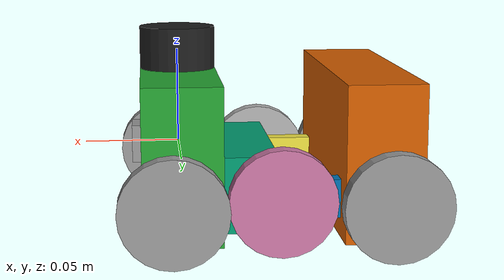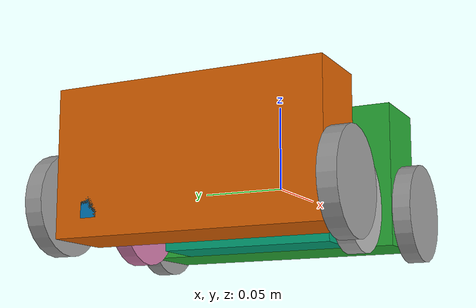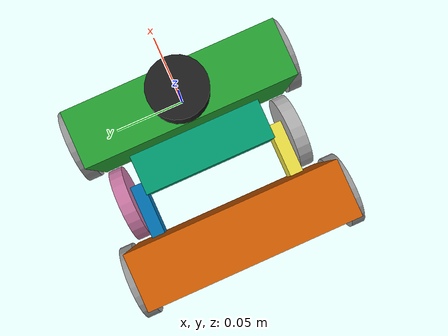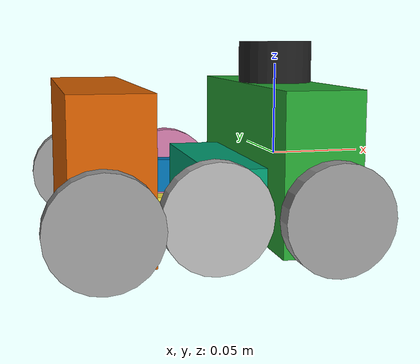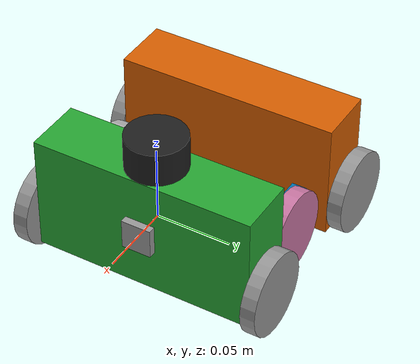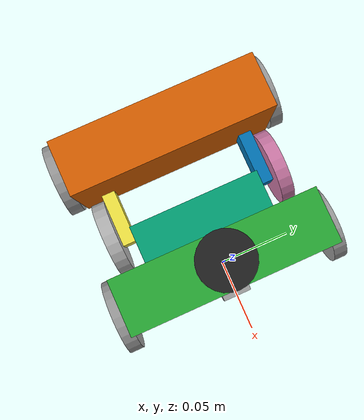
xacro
<?xml version='1.0'?>

<robot name="magbot" xmlns:xacro="http://www.ros.org/wiki/xacro">

  <xacro:property name="diameter" value="0.055"/>
  <xacro:property name="thickness" value="0.01"/>
  <xacro:include filename="magbot.gazebo" />

  <link name="robot_footprint"></link>

  <joint name="robot_footprint_joint" type="fixed">
    <origin xyz="0 0 0" rpy="0 0 0" />
    <parent link="robot_footprint"/>
    <child link="chassis" />
  </joint>
  <joint name="robot_footprint_joint_dummy1" type="fixed">
    <origin xyz="-0.035 0 -0.02" rpy="0 0 0" />
    <parent link="robot_footprint"/>
    <child link="front_dummy_body" />
  </joint>
  <link name='chassis'>
    <pose>0 0 0.12 0 0 0</pose>

    <inertial>
      <mass value="15.0"/>
      <origin xyz="0.0 0 0" rpy=" 0 0 0"/>
      <inertia ixx="0.1" ixy="0" ixz="0" iyy="0.1" iyz="0" izz="0.1" />
    </inertial>

    <collision name='collision'>
      <origin xyz="0 0 0" rpy=" 0 0 0"/>
      <geometry>
        <box size=".04 .15 .08"/>
      </geometry>
    </collision>

    <visual name='chassis_visual'>
      <origin xyz="0 0 0" rpy=" 0 0 0"/>
      <geometry>
        <box size=".04 .15 .08"/>
      </geometry>
    </visual>
  </link>
  <link name='front_dummy_body'>
    <pose>0 0 0 0 0 0</pose>

    <inertial>
      <mass value="15.0"/>
      <origin xyz="0.0 0 0" rpy=" 0 0 0"/>
      <inertia ixx="0.1" ixy="0" ixz="0" iyy="0.1" iyz="0" izz="0.1" />
    </inertial>

    <collision name='collision'>
      <origin xyz="0 0 0" rpy=" 0 0 0"/>
      <geometry>
        <box size=".0 .0 .0"/>
      </geometry>
    </collision>

    <visual name='chassis_visual'>
      <origin xyz="0 0 0" rpy=" 0 0 0"/>
      <geometry>
        <box size=".03 .1 .04"/>
      </geometry>
    </visual>
  </link>
  <link name='dummy_body_link_right'>
    <inertial>
      <mass value="15.0"/>
      <origin xyz="0.0 0 0" rpy=" 0 0 0"/>
      <inertia ixx="0.1" ixy="0" ixz="0" iyy="0.1" iyz="0" izz="0.1" />
    </inertial>

    <visual name='chassis_visual'>
      <origin xyz="-0.03 -0.005 0" rpy=" 0 0 0"/>
      <geometry>
        <box size=".08 .01 .02"/>
      </geometry>
    </visual>
    <collision name='collision'>
      <origin xyz="-0.03 -0.005 0" rpy=" 0 0 0"/>
      <geometry>
        <box size=".08 .01 .02"/>
      </geometry>
    </collision>
  </link>

  <joint type="revolute" name="dummy_body_link_right_joint">
    <origin xyz="-0.015 -0.05 0" rpy="0 0 0"/>
    <child link="dummy_body_link_right"/>
    <parent link="front_dummy_body"/>
    <axis xyz="0 1 0" rpy="0 0 0"/>
    <limit lower="-1.5708" upper="1.5708" effort="1" velocity="1"/>
    <dynamics damping="1.0" friction="1.0"/>
  </joint>

  <link name='dummy_body_link_left'>
    <inertial>
      <mass value="15.0"/>
      <origin xyz="0.0 0 0" rpy=" 0 0 0"/>
      <inertia ixx="0.1" ixy="0" ixz="0" iyy="0.1" iyz="0" izz="0.1" />
    </inertial>
    <visual name='chassis_visual'>
      <origin xyz="-0.03 0.005 0" rpy=" 0 0 0"/>
      <geometry>
        <box size=".08 .01 .02"/>
      </geometry>
    </visual>

    <collision name='collision'>
      <origin xyz="-0.03 0.005 0" rpy=" 0 0 0"/>
      <geometry>
        <box size=".08 .01 .02"/>
      </geometry>
    </collision>
  </link>

  <joint type="fixed" name="dummy_body_link_left_joint">
    <origin xyz="0 0.1 0" rpy="0 0 0"/>
    <child link="dummy_body_link_left"/>
    <parent link="dummy_body_link_right"/>
    <dynamics damping="1.0" friction="1.0"/>
  </joint>

  <link name='chassis_back_body'>
    <pose>0 0 0 0 0 0</pose>
    <inertial>
      <mass value="15.0"/>
      <origin xyz="0.0 0 0" rpy=" 0 0 0"/>
      <inertia ixx="0.1" ixy="0" ixz="0" iyy="0.1" iyz="0" izz="0.1" />
    </inertial>
    <collision name='collision'>
      <origin xyz="0 0 0" rpy=" 0 0 0"/>
      <geometry>
        <box size=".04 .15 .08"/>
      </geometry>
    </collision>
    <visual name='chassis_visual'>
      <origin xyz="0 0 0" rpy=" 0 0 0"/>
      <geometry>
        <box size=".04 .15 .08"/>
      </geometry>
    </visual>
  </link>

  <joint type="fixed" name="chassis_back_body_joint">
    <origin xyz="-0.05 0.05 0.02" rpy="0 0 0"/>

    <child link="chassis_back_body"/>
    <parent link="dummy_body_link_right"/>

    <dynamics damping="1.0" friction="1.0"/>
  </joint>

  <joint type="continuous" name="back_left_wheel_joint">
    <origin xyz="-0.005 0.081 -0.02" rpy="0 0 0"/>
    <child link="back_left_wheel"/>
    <parent link="chassis_back_body"/>
    <axis xyz="0 1 0" rpy="0 0 0"/>
    <limit effort="10" velocity="1000"/>
    <dynamics damping="1.0" friction="1.0"/>
  </joint>

  <joint type="continuous" name="back_right_wheel_joint">
    <origin xyz="-0.005 -0.081 -0.02" rpy="0 0 0"/>
    <child link="back_right_wheel"/>
    <parent link="chassis_back_body"/>
    <axis xyz="0 1 0" rpy="0 0 0"/>
    <limit effort="10" velocity="1000"/>
    <dynamics damping="1.0" friction="1.0"/>
  </joint>

  <!--  dummy wheel      -->
  <link name="dummy_left_wheel">
    <inertial>
      <mass value="8.0"/>
      <origin rpy=" 0 1.5707 1.5707" xyz="0.0 0 0"/>
      <inertia ixx="0.1" ixy="0" ixz="0" iyy="0.1" iyz="0" izz="0.1"/>
    </inertial>
    <collision>
      <origin rpy=" 0 1.5707 1.5707" xyz="0.0 0 0"/>
      <geometry>
	      <cylinder length="${thickness}" radius="${diameter/2}"/>
      </geometry>
    </collision>
    <visual>
      <origin xyz="0.0 0 0" rpy=" 0 1.5707 1.5707"/>
      <geometry>
	      <cylinder length="${thickness}" radius="${diameter/2}"/>
      </geometry>
    </visual>
  </link>

  <link name="dummy_right_wheel">
    <inertial>
      <mass value="8.0"/>
      <origin rpy=" 0 1.5707 1.5707" xyz="0.0 0 0"/>
      <inertia ixx="0.1" ixy="0" ixz="0" iyy="0.1" iyz="0" izz="0.1"/>
    </inertial>
    <collision>
      <origin rpy=" 0 1.5707 1.5707" xyz="0.0 0 0"/>
      <geometry>
	      <cylinder length="${thickness}" radius="${diameter/2}"/>
      </geometry>
    </collision>
    <visual>
      <origin xyz="0.0 0 0" rpy=" 0 1.5707 1.5707"/>
      <geometry>
	      <cylinder length="${thickness}" radius="${diameter/2}"/>
      </geometry>
    </visual>
  </link>

   <joint type="continuous" name="dummy_right_wheel_joint">
    <origin xyz="0 -0.0151 0" rpy="0 0 0"/>
    <child link="dummy_right_wheel"/>
    <parent link="dummy_body_link_right"/>
    <axis xyz="0 1 0" rpy="0 0 0"/>
    <limit effort="10000" velocity="1000"/>
    <dynamics damping="1.0" friction="1.0"/>
  </joint>

  <joint type="continuous" name="dummy_left_wheel_joint">
    <origin xyz="0 0.0151 0" rpy="0 0 0"/>
    <child link="dummy_left_wheel"/>
    <parent link="dummy_body_link_left"/>
    <axis xyz="0 1 0" rpy="0 0 0"/>
    <limit effort="10000" velocity="1000"/>
    <dynamics damping="1.0" friction="1.0"/>
  </joint>

  <link name="front_left_wheel">
    <inertial>
      <mass value="8.0"/>
      <origin xyz="0.0 0 0" rpy=" 0 1.5707 1.5707"/>
      <inertia ixx="0.1" ixy="0" ixz="0" iyy="0.1" iyz="0" izz="0.1" />
    </inertial>

    <collision>
      <origin xyz="0.0 0 0" rpy=" 0 1.5707 1.5707"/>
      <geometry>
	      <cylinder length="${thickness}" radius="${diameter/2}"/>
      </geometry>
    </collision>

    <visual>
      <origin xyz="0.0 0 0" rpy=" 0 1.5707 1.5707"/>
      <geometry>
	        <cylinder length="${thickness}" radius="${diameter/2}"/>
      </geometry>
    </visual>
  </link>

  <link name="back_left_wheel">
    <inertial>
      <mass value="8.0"/>
      <origin xyz="0.0 0 0" rpy=" 0 1.5707 1.5707"/>
      <inertia ixx="0.1" ixy="0" ixz="0" iyy="0.1" iyz="0" izz="0.1" />
    </inertial>

    <collision>
      <origin xyz="0.0 0 0" rpy=" 0 1.5707 1.5707"/>
      <geometry>
	      <cylinder length="${thickness}" radius="${diameter/2}"/>
      </geometry>
    </collision>

    <visual>
      <origin xyz="0.0 0 0" rpy=" 0 1.5707 1.5707"/>
      <geometry>
	      <cylinder length="${thickness}" radius="${diameter/2}"/>
      </geometry>
    </visual>
  </link>

  <link name="front_right_wheel">
    <inertial>
      <mass value="8.0"/>
      <origin xyz="0.0 0 0" rpy=" 0 1.5707 1.5707"/>
      <inertia ixx="0.1" ixy="0" ixz="0" iyy="0.1" iyz="0" izz="0.1" />
    </inertial>

    <collision>
      <origin xyz="0.0 0 0" rpy=" 0 1.5707 1.5707"/>
      <geometry>
	      <cylinder length="${thickness}" radius="${diameter/2}"/>
      </geometry>
    </collision>

    <visual>
      <origin xyz="0.0 0 0" rpy=" 0 1.5707 1.5707"/>
      <geometry>
	<cylinder length="${thickness}" radius="${diameter/2}"/>
      </geometry>
    </visual>
  </link>

  <link name="back_right_wheel">
    <inertial>
      <mass value="8.0"/>
      <origin xyz="0.0 0 0" rpy=" 0 1.5707 1.5707"/>
      <inertia ixx="0.1" ixy="0" ixz="0" iyy="0.1" iyz="0" izz="0.1" />
    </inertial>

    <collision>
      <origin xyz="0.0 0 0" rpy=" 0 1.5707 1.5707"/>
      <geometry>
	      <cylinder length="${thickness}" radius="${diameter/2}"/>
      </geometry>
    </collision>

    <visual>
      <origin xyz="0.0 0 0" rpy=" 0 1.5707 1.5707"/>
      <geometry>
	      <cylinder length="${thickness}" radius="${diameter/2}"/>
      </geometry>
    </visual>
  </link>

  <link name="camera">
    <inertial>
      <mass value="0.01"/>
      <origin xyz="0.05 0.05 0.05" rpy=" 0 0 0"/>
      <inertia ixx="1e-6" ixy="0" ixz="0" iyy="1e-6" iyz="0" izz="1e-6" />
    </inertial>

    <visual name="camera_visual">
      <origin xyz="0 0 0" rpy="0 0 0" />
      <geometry>
        <box size="0.01 0.02 0.02"/>
      </geometry>
    </visual>

    <collision name="camera_colision">
      <origin xyz="0 0 0" rpy="0 0 0" />
      <geometry>
        <box size="0.01 0.02 0.02"/>
      </geometry>
    </collision>
  </link>

  <link name="camera_link_optical">
    <inertial>
      <mass value="0.01"/>
      <origin xyz="0 0 0" rpy=" 0 0 0"/>
      <inertia ixx="1e-6" ixy="0" ixz="0" iyy="1e-6" iyz="0" izz="1e-6" />
    </inertial>

    <visual name="camera_link_optical_visual">
      <origin xyz="0 0 0" rpy="0 0 0" />
      <geometry>
        <box size="0 0 0"/>
      </geometry>
    </visual>
  </link>

  <joint type="fixed" name="camera_joint_optical">
    <origin xyz="0 0 0" rpy="${-pi/2} 0 ${-pi/2}"/>
    <child link="camera_link_optical"/>
    <parent link="camera"/>
    </joint>

  <joint type="fixed" name="camera_joint">
    <origin xyz="0.02 0 0" rpy="0 0 0"/>
      <child link="camera"/>
      <parent link="chassis"/>
    <axis xyz="0 1 0" rpy="0 0 0"/>
  </joint>

  <link name="hokuyo">
    <inertial>
      <mass value="1e-5"/>
      <origin xyz="0 0 0" rpy=" 0 0 0"/>
      <inertia ixx="1e-6" ixy="0" ixz="0" iyy="1e-6" iyz="0" izz="1e-6" />
    </inertial>

    <visual name="hokuyo_visual">
      <origin xyz="0 0 0" rpy="0 0 0" />
      <geometry>
        <cylinder length="0.025" radius="0.02"/>
      </geometry>
    </visual>

    <collision name="hokuyo_colision">
      <origin xyz="0 0 0" rpy="0 0 0" />
      <geometry>
        <cylinder length="0.025" radius="0.02"/>
      </geometry>
    </collision>
  </link>

  <joint type="continuous" name="front_left_wheel_joint">
    <origin xyz="0.005 0.081 -0.02" rpy="0 0 0"/>
    <child link="front_left_wheel"/>
    <parent link="chassis"/>
    <axis xyz="0 1 0" rpy="0 0 0"/>
    <limit effort="10" velocity="1000"/>
    <dynamics damping="1.0" friction="1.0"/>
  </joint>

  <joint type="continuous" name="front_right_wheel_joint">
    <origin xyz="0.005 -0.081 -0.02" rpy="0 0 0"/>
    <child link="front_right_wheel"/>
    <parent link="chassis"/>
    <axis xyz="0 1 0" rpy="0 0 0"/>
    <limit effort="10" velocity="1000"/>
    <dynamics damping="1.0" friction="1.0"/>
  </joint>

  <joint type="fixed" name="hokuyo_joint">
    <origin xyz="0 0 0.05" rpy="0 0 0"/>
    <child link="hokuyo"/>
    <parent link="chassis"/>
    <axis xyz="0 1 0" rpy="0 0 0"/>
  </joint>

  <gazebo reference="chassis">
    <material>Gazebo/Green</material>
  </gazebo>

  <gazebo reference="front_left_wheel">
    <material>Gazebo/Gray</material>
  </gazebo>

  <gazebo reference="front_right_wheel">
    <material>Gazebo/Gray</material>
  </gazebo>

  <gazebo reference="back_left_wheel">
    <material>Gazebo/Gray</material>
  </gazebo>

  <gazebo reference="back_right_wheel">
    <material>Gazebo/Gray</material>
  </gazebo>

  <gazebo reference="camera">
    <material>Gazebo/Gray</material>
  </gazebo>

  <gazebo reference="hokuyo">
    <material>Gazebo/Black</material>
  </gazebo>

</robot>
